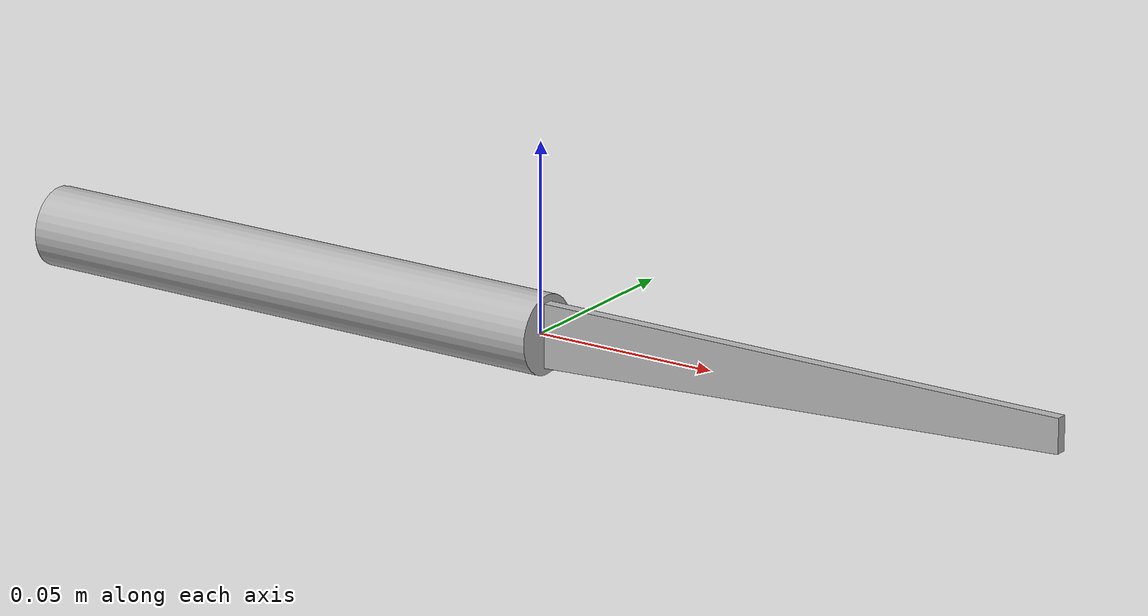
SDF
<?xml version="1.0" ?>
<sdf version="1.3">
  <model name="knife">
    <link name="knife">
      <gravity>false</gravity>
      <inertial>
        <mass>0.02</mass>
      </inertial>
      <collision name="knife_collision">
        <geometry><box><size>0.0001 0.0001 0.0001</size></box></geometry>
          <surface>
            <contact>
              <collide_without_contact>true</collide_without_contact>
            </contact>
          </surface>
      </collision>
      <visual name="knife_visual">
        <geometry>
          <mesh>
            <uri>model://knife/meshes/knife.stl</uri>
          </mesh>
        </geometry>
      </visual>
    </link>
  </model>
</sdf>
